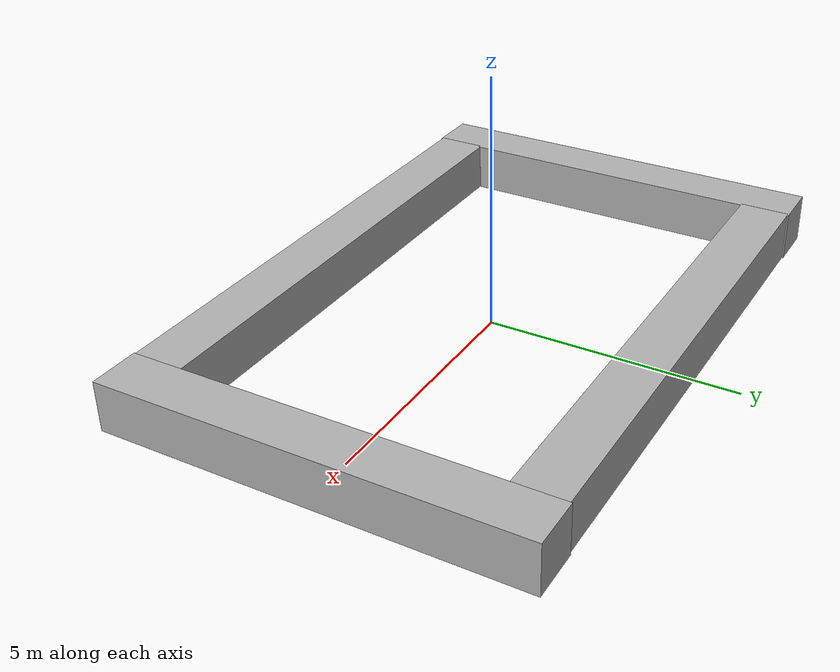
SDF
<sdf version="1.9">
 <world name="empty">
  <scene><ambient>0.4 0.4 0.4 1</ambient><background>0.6 0.8 0.6 1</background><shadows>true</shadows></scene>
  <gravity>0 0 -9.8</gravity>
  <plugin name="ignition::gazebo::systems::Physics" filename="libignition-gazebo-physics-system.so"/>
  <plugin name="ignition::gazebo::systems::UserCommands" filename="libignition-gazebo-user-commands-system.so"/>
  <plugin name="ignition::gazebo::systems::SceneBroadcaster" filename="libignition-gazebo-scene-broadcaster-system.so"/>
  <plugin name="ignition::gazebo::systems::Sensors" filename="libignition-gazebo-sensors-system.so">
   <render_engine>ogre2</render_engine>
  </plugin>
  <model name="box">
   <pose>5.69981 0 0.5 0 -0 0</pose>
   <link name="box_link">
    <inertial>
     <inertia><ixx>0.16666</ixx><ixy>0</ixy><ixz>0</ixz><iyy>0.16666</iyy><iyz>0</iyz><izz>0.16666</izz></inertia>
     <mass>1</mass>
    </inertial>
    <collision name="box_collision"><geometry><box><size>1 8.3 1</size></box></geometry></collision>
    <visual name="box_visual">
     <geometry><box><size>1 8.3 1</size></box></geometry>
     <material>
      <ambient>0.3 0.3 0.3 1</ambient>
      <diffuse>0.7 0.7 0.7 1</diffuse>
      <specular>1 1 1 1</specular>
     </material>
    </visual>
   </link>
   <static>false</static>
  </model>
  <model name="box_0">
   <pose>0 3.62417 0.5 0 -0 0</pose>
   <link name="box_link">
    <inertial>
     <inertia><ixx>0.16666</ixx><ixy>0</ixy><ixz>0</ixz><iyy>0.16666</iyy><iyz>0</iyz><izz>0.16666</izz></inertia>
     <mass>1</mass>
    </inertial>
    <collision name="box_collision"><geometry><box><size>10.5 1 1</size></box></geometry></collision>
    <visual name="box_visual">
     <geometry><box><size>10.5 1 1</size></box></geometry>
     <material>
      <ambient>0.3 0.3 0.3 1</ambient>
      <diffuse>0.7 0.7 0.7 1</diffuse>
      <specular>1 1 1 1</specular>
     </material>
    </visual>
   </link>
   <static>false</static>
  </model>
  <model name="box_1">
   <pose>-5.69083 0 0.5 0 -0 0</pose>
   <link name="box_link">
    <inertial>
     <inertia><ixx>0.16666</ixx><ixy>0</ixy><ixz>0</ixz><iyy>0.16666</iyy><iyz>0</iyz><izz>0.16666</izz></inertia>
     <mass>1</mass>
    </inertial>
    <collision name="box_collision"><geometry><box><size>1 8.3 1</size></box></geometry></collision>
    <visual name="box_visual">
     <geometry><box><size>1 8.3 1</size></box></geometry>
     <material>
      <ambient>0.3 0.3 0.3 1</ambient>
      <diffuse>0.7 0.7 0.7 1</diffuse>
      <specular>1 1 1 1</specular>
     </material>
    </visual>
   </link>
   <static>false</static>
  </model>
  <model name="box_2">
   <pose>0 -3.62085 0.5 0 -0 0</pose>
   <link name="box_link">
    <inertial>
     <inertia><ixx>0.16666</ixx><ixy>0</ixy><ixz>0</ixz><iyy>0.16666</iyy><iyz>0</iyz><izz>0.16666</izz></inertia>
     <mass>1</mass>
    </inertial>
    <collision name="box_collision"><geometry><box><size>10.5 1 1</size></box></geometry></collision>
    <visual name="box_visual">
     <geometry><box><size>10.5 1 1</size></box></geometry>
     <material>
      <ambient>0.3 0.3 0.3 1</ambient>
      <diffuse>0.7 0.7 0.7 1</diffuse>
      <specular>1 1 1 1</specular>
     </material>
    </visual>
   </link>
   <static>false</static>
  </model>
  <light name="sun" type="directional">
   <pose>0 0 10 0 -0 0</pose>
   <intensity>1</intensity>
   <direction>-0.5 0.1 -1</direction>
   <diffuse>0.8 0.8 0.8 1</diffuse>
   <specular>0.2 0.2 0.2 1</specular>
   <attenuation><range>10</range><linear>1</linear><constant>1</constant><quadratic>0</quadratic></attenuation>
   <spot><inner_angle>0</inner_angle><outer_angle>0</outer_angle><falloff>0</falloff></spot>
  </light>
 </world>
</sdf>
